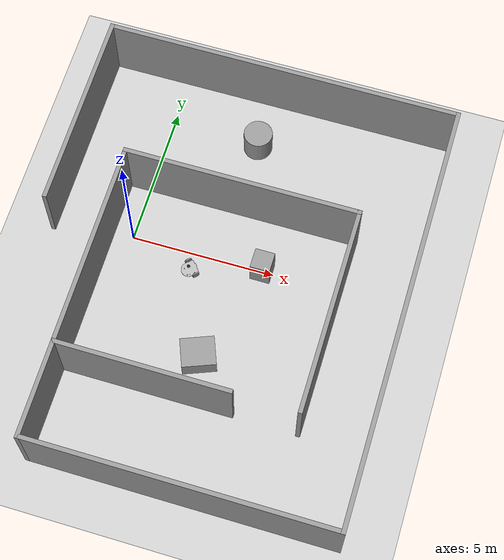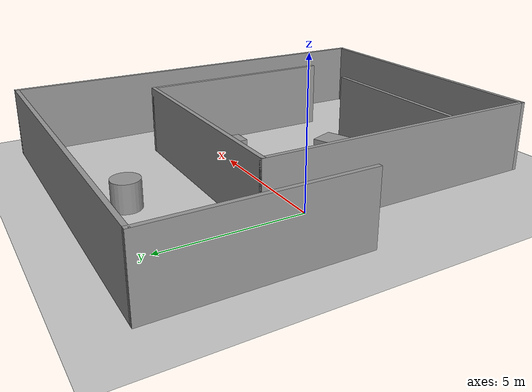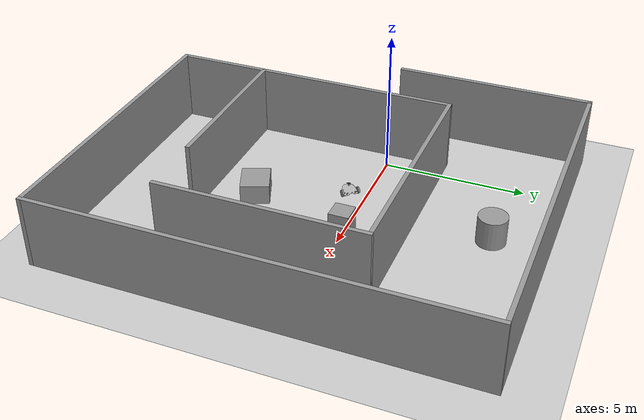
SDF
<sdf version="1.7">
 <world name="default">
  <light name="sun" type="directional">
   <pose>0 0 10 0 -0 0</pose>
   <diffuse>0.8 0.8 0.8 1</diffuse>
   <specular>0.2 0.2 0.2 1</specular>
   <attenuation>
    <range>1000</range>
    <constant>0.9</constant>
    <linear>0.01</linear>
    <quadratic>0.001</quadratic>
   </attenuation>
   <direction>-0.5 0.1 -0.9</direction>
   <spot><inner_angle>0</inner_angle><outer_angle>0</outer_angle><falloff>0</falloff></spot>
  </light>
  <model name="ground_plane">
   <static>1</static>
   <link name="link">
    <collision name="collision">
     <geometry><plane><normal>0 0 1</normal><size>100 100</size></plane></geometry>
     <surface>
      <contact><collide_bitmask>65535</collide_bitmask></contact>
      <friction><ode><mu>100</mu><mu2>50</mu2></ode></friction>
     </surface>
    </collision>
    <visual name="visual">
     <cast_shadows>0</cast_shadows>
     <geometry><plane><normal>0 0 1</normal><size>100 100</size></plane></geometry>
     <material>
      <script><uri>file://media/materials/scripts/gazebo.material</uri><name>Gazebo/Grey</name></script>
     </material>
    </visual>
   </link>
  </model>
  <gravity>0 0 -9.8</gravity>
  <magnetic_field>6e-06 2.3e-05 -4.2e-05</magnetic_field>
  <atmosphere type="adiabatic"/>
  <physics type="ode">
   <max_step_size>0.001</max_step_size>
   <real_time_factor>1</real_time_factor>
   <real_time_update_rate>1000</real_time_update_rate>
  </physics>
  <scene><ambient>0.4 0.4 0.4 1</ambient><background>0.7 0.7 0.7 1</background><shadows>1</shadows></scene>
  <audio><device>default</device></audio>
  <spherical_coordinates>
   <surface_model>EARTH_WGS84</surface_model>
   <latitude_deg>0</latitude_deg>
   <longitude_deg>0</longitude_deg>
   <elevation>0</elevation>
   <heading_deg>0</heading_deg>
  </spherical_coordinates>
  <model name="dustbuster">
   <link name="base_link">
    <inertial>
     <pose>0.033753 0 0.022797 0 -0 0</pose>
     <mass>25.71</mass>
     <inertia>
      <ixx>0.518029</ixx>
      <ixy>0</ixy>
      <ixz>-0.138131</ixz>
      <iyy>0.873749</iyy>
      <iyz>0</iyz>
      <izz>1.0779</izz>
     </inertia>
    </inertial>
    <collision name="base_link_fixed_joint_lump__collision_collision">
     <geometry>
      <mesh>
       <scale>1 1 1</scale>
       <uri>file:///home/onur/Desktop/DustBusterAI-Software/dustbuster_ws/src/dustbuster_launch/dustbuster_launch/description/mesh/chassis.stl</uri>
      </mesh>
     </geometry>
    </collision>
    <collision name="base_link_fixed_joint_lump__laser_frame_collision_1">
     <pose>0.122 0 0.25 0 -0 0</pose>
     <geometry><cylinder><length>0.04</length><radius>0.05</radius></cylinder></geometry>
    </collision>
    <visual name="base_link_fixed_joint_lump__visual_visual">
     <geometry>
      <mesh>
       <scale>1 1 1</scale>
       <uri>file:///home/onur/Desktop/DustBusterAI-Software/dustbuster_ws/src/dustbuster_launch/dustbuster_launch/description/mesh/chassis.stl</uri>
      </mesh>
     </geometry>
    </visual>
    <visual name="base_link_fixed_joint_lump__camera_link_visual_1">
     <pose>0.276 0 0.181 0 -0 0</pose>
     <geometry><box><size>0.01 0.03 0.03</size></box></geometry>
     <material>
      <script><name>Gazebo/Black</name><uri>file://media/materials/scripts/gazebo.material</uri></script>
     </material>
    </visual>
    <visual name="base_link_fixed_joint_lump__camera_link_visual_2">
     <pose>0.276 0 0.131 0 -0 0</pose>
     <geometry><cylinder><length>0.1</length><radius>0.002</radius></cylinder></geometry>
     <material>
      <script><name>Gazebo/Black</name><uri>file://media/materials/scripts/gazebo.material</uri></script>
     </material>
    </visual>
    <visual name="base_link_fixed_joint_lump__laser_frame_visual_3">
     <pose>0.122 0 0.25 0 -0 0</pose>
     <geometry><cylinder><length>0.04</length><radius>0.05</radius></cylinder></geometry>
     <material>
      <script><name>Gazebo/Black</name><uri>file://media/materials/scripts/gazebo.material</uri></script>
     </material>
    </visual>
    <visual name="base_link_fixed_joint_lump__laser_frame_visual_4">
     <pose>0.122 0 0.2 0 -0 0</pose>
     <geometry><cylinder><length>0.1</length><radius>0.01</radius></cylinder></geometry>
     <material>
      <script><name>Gazebo/Black</name><uri>file://media/materials/scripts/gazebo.material</uri></script>
     </material>
    </visual>
    <visual name="base_link_fixed_joint_lump__imu_link_visual_5">
     <geometry><box><size>0.01 0.01 0.01</size></box></geometry>
    </visual>
    <sensor name="camera" type="camera">
     <visualize>1</visualize>
     <update_rate>10</update_rate>
     <camera>
      <horizontal_fov>1.089</horizontal_fov>
      <image><format>R8G8B8</format><width>640</width><height>480</height></image>
      <clip><near>0.05</near><far>8</far></clip>
     </camera>
     <plugin name="camera_controller" filename="libgazebo_ros_camera.so">
      <frame_name>camera_link_optical</frame_name>
     </plugin>
     <pose>0.276 0 0.181 0 -0 0</pose>
    </sensor>
    <sensor name="laser" type="ray">
     <visualize>1</visualize>
     <update_rate>10</update_rate>
     <ray>
      <scan>
       <horizontal>
        <samples>683</samples>
        <min_angle>-2.08621</min_angle>
        <max_angle>2.08621</max_angle>
        <resolution>1</resolution>
       </horizontal>
       <vertical><samples>1</samples><min_angle>0</min_angle><max_angle>0</max_angle></vertical>
      </scan>
      <range><min>0.2</min><max>5.6</max></range>
     </ray>
     <plugin name="laser_controller" filename="libgazebo_ros_ray_sensor.so">
      <ros><argument>~/out:=scan</argument></ros>
      <output_type>sensor_msgs/LaserScan</output_type>
      <frame_name>laser_frame</frame_name>
     </plugin>
     <pose>0.122 0 0.25 0 -0 0</pose>
    </sensor>
    <sensor name="imu_sensor" type="imu">
     <always_on>1</always_on>
     <update_rate>200</update_rate>
     <plugin name="gazebo_ros_imu_controller" filename="libgazebo_ros_imu_sensor.so">
      <ros><argument>~/out:=imu</argument></ros>
      <body_name>imu_link</body_name>
      <topicName>imu/data</topicName>
      <frameId>imu_link</frameId>
      <xyzOffsets>0 0 0</xyzOffsets>
      <rpyOffsets>0 0 0</rpyOffsets>
      <gaussianNoise>0.0</gaussianNoise>
      <biasTopic>~/imu/bias</biasTopic>
     </plugin>
    </sensor>
   </link>
   <joint name="caster_wheel_mount_joint" type="revolute">
    <pose relative_to="base_link">0.35 0 -0.0625 0 -0 0</pose>
    <parent>base_link</parent>
    <child>caster_wheel_mount</child>
    <axis>
     <xyz>0 0 1</xyz>
     <limit><lower>-1e+20</lower><upper>1e+20</upper><effort>1</effort><velocity>2</velocity></limit>
     <dynamics><spring_reference>0</spring_reference><spring_stiffness>0</spring_stiffness></dynamics>
    </axis>
   </joint>
   <link name="caster_wheel_mount">
    <pose relative_to="caster_wheel_mount_joint">0 0 0 0 -0 0</pose>
    <inertial>
     <mass>0.1</mass>
     <inertia>
      <ixx>3.52083e-05</ixx>
      <ixy>0</ixy>
      <ixz>0</ixz>
      <iyy>3.52083e-05</iyy>
      <iyz>0</iyz>
      <izz>1.04167e-05</izz>
     </inertia>
    </inertial>
    <collision name="caster_wheel_mount_collision">
     <geometry><box><size>0.025 0.025 0.06</size></box></geometry>
    </collision>
    <visual name="caster_wheel_mount_visual">
     <geometry><box><size>0.025 0.025 0.06</size></box></geometry>
    </visual>
   </link>
   <joint name="caster_wheel_joint" type="revolute">
    <pose relative_to="caster_wheel_mount">0 0 -0.025 1.5708 -0 0</pose>
    <parent>caster_wheel_mount</parent>
    <child>caster_wheel</child>
    <axis>
     <xyz>0 0 1</xyz>
     <limit><lower>-1e+20</lower><upper>1e+20</upper><effort>1</effort><velocity>2</velocity></limit>
     <dynamics><spring_reference>0</spring_reference><spring_stiffness>0</spring_stiffness></dynamics>
    </axis>
   </joint>
   <link name="caster_wheel">
    <pose relative_to="caster_wheel_joint">0 0 0 0 -0 0</pose>
    <inertial>
     <mass>0.1</mass>
     <inertia>
      <ixx>3.39583e-05</ixx>
      <ixy>0</ixy>
      <ixz>0</ixz>
      <iyy>6.125e-05</iyy>
      <iyz>0</iyz>
      <izz>3.39583e-05</izz>
     </inertia>
    </inertial>
    <collision name="caster_wheel_collision">
     <geometry><cylinder><length>0.02</length><radius>0.035</radius></cylinder></geometry>
    </collision>
    <visual name="caster_wheel_visual">
     <geometry><cylinder><length>0.02</length><radius>0.035</radius></cylinder></geometry>
     <material>
      <script><name>Gazebo/Grey</name><uri>file://media/materials/scripts/gazebo.material</uri></script>
     </material>
    </visual>
    <surface><friction><ode><mu>0.8</mu><mu2>0.7</mu2></ode></friction></surface>
   </link>
   <joint name="left_wheel_joint" type="revolute">
    <pose relative_to="base_link">0 0.2935 0 -1.5708 0 0</pose>
    <parent>base_link</parent>
    <child>left_wheel</child>
    <axis>
     <xyz>0 0 1</xyz>
     <limit><lower>-1e+16</lower><upper>1e+16</upper></limit>
     <dynamics><spring_reference>0</spring_reference><spring_stiffness>0</spring_stiffness></dynamics>
    </axis>
   </joint>
   <link name="left_wheel">
    <pose relative_to="left_wheel_joint">0 0 0 0 -0 0</pose>
    <inertial>
     <mass>0.5</mass>
     <inertia>
      <ixx>0.00197995</ixx>
      <ixy>0</ixy>
      <ixz>0</ixz>
      <iyy>0.00375234</iyy>
      <iyz>0</iyz>
      <izz>0.00197995</izz>
     </inertia>
    </inertial>
    <collision name="left_wheel_collision">
     <geometry><cylinder><length>0.05</length><radius>0.1225</radius></cylinder></geometry>
    </collision>
    <visual name="left_wheel_visual">
     <geometry><cylinder><length>0.05</length><radius>0.1225</radius></cylinder></geometry>
     <material>
      <script><name>Gazebo/Grey</name><uri>file://media/materials/scripts/gazebo.material</uri></script>
     </material>
    </visual>
    <surface><friction><ode><mu>0.8</mu><mu2>0.7</mu2></ode></friction></surface>
   </link>
   <joint name="right_wheel_joint" type="revolute">
    <pose relative_to="base_link">0 -0.2935 0 1.5708 -0 0</pose>
    <parent>base_link</parent>
    <child>right_wheel</child>
    <axis>
     <xyz>0 0 -1</xyz>
     <limit><lower>-1e+16</lower><upper>1e+16</upper></limit>
     <dynamics><spring_reference>0</spring_reference><spring_stiffness>0</spring_stiffness></dynamics>
    </axis>
   </joint>
   <link name="right_wheel">
    <pose relative_to="right_wheel_joint">0 0 0 0 -0 0</pose>
    <inertial>
     <mass>0.5</mass>
     <inertia>
      <ixx>0.00197995</ixx>
      <ixy>0</ixy>
      <ixz>0</ixz>
      <iyy>0.00375234</iyy>
      <iyz>0</iyz>
      <izz>0.00197995</izz>
     </inertia>
    </inertial>
    <collision name="right_wheel_collision">
     <geometry><cylinder><length>0.05</length><radius>0.1225</radius></cylinder></geometry>
    </collision>
    <visual name="right_wheel_visual">
     <geometry><cylinder><length>0.05</length><radius>0.1225</radius></cylinder></geometry>
     <material>
      <script><name>Gazebo/Grey</name><uri>file://media/materials/scripts/gazebo.material</uri></script>
     </material>
    </visual>
    <surface><friction><ode><mu>0.8</mu><mu2>0.7</mu2></ode></friction></surface>
   </link>
   <static>0</static>
   <plugin name="diff_drive" filename="libgazebo_ros_diff_drive.so">
    <left_joint>left_wheel_joint</left_joint>
    <right_joint>right_wheel_joint</right_joint>
    <wheel_separation>0.587</wheel_separation>
    <wheel_diameter>0.245</wheel_diameter>
    <max_wheel_torque>200</max_wheel_torque>
    <max_wheel_acceleration>10.0</max_wheel_acceleration>
    <odometry_frame>odom</odometry_frame>
    <robot_base_frame>base_link</robot_base_frame>
    <publish_odom>1</publish_odom>
    <publish_odom_tf>1</publish_odom_tf>
    <publish_wheel_tf>1</publish_wheel_tf>
   </plugin>
   <pose>2.27713 -0.554798 0.122499 2e-06 4.4e-05 -2.39431</pose>
  </model>
  <model name="walls2">
   <link name="Wall_2">
    <pose>-6.05 4 0 0 -0 1.5708</pose>
    <visual name="Wall_2_Visual">
     <pose>0 0 1.25 0 -0 0</pose>
     <geometry><box><size>7 0.15 2.5</size></box></geometry>
     <material>
      <script><uri>file://media/materials/scripts/gazebo.material</uri><name>Gazebo/Grey</name></script>
      <ambient>1 1 1 1</ambient>
      <shader type="pixel"/>
     </material>
     <meta><layer>0</layer></meta>
    </visual>
    <collision name="Wall_2_Collision">
     <pose>0 0 1.25 0 -0 0</pose>
     <geometry><box><size>7 0.15 2.5</size></box></geometry>
     <surface>
      <friction>
       <ode><mu>1</mu><mu2>1</mu2><fdir1>0 0 0</fdir1><slip1>0</slip1><slip2>0</slip2></ode>
       <torsional>
        <coefficient>1</coefficient>
        <patch_radius>0</patch_radius>
        <surface_radius>0</surface_radius>
        <use_patch_radius>1</use_patch_radius>
        <ode><slip>0</slip></ode>
       </torsional>
      </friction>
      <bounce><restitution_coefficient>0</restitution_coefficient><threshold>1e+06</threshold></bounce>
      <contact>
       <collide_without_contact>0</collide_without_contact>
       <collide_without_contact_bitmask>1</collide_without_contact_bitmask>
       <collide_bitmask>1</collide_bitmask>
       <ode>
        <soft_cfm>0</soft_cfm>
        <soft_erp>0.2</soft_erp>
        <kp>1e+13</kp>
        <kd>1</kd>
        <max_vel>0.01</max_vel>
        <min_depth>0</min_depth>
       </ode>
       <bullet>
        <split_impulse>1</split_impulse>
        <split_impulse_penetration_threshold>-0.01</split_impulse_penetration_threshold>
        <soft_cfm>0</soft_cfm>
        <soft_erp>0.2</soft_erp>
        <kp>1e+13</kp>
        <kd>1</kd>
       </bullet>
      </contact>
     </surface>
    </collision>
   </link>
   <link name="Wall_3">
    <pose>0.125 7.425 0 0 -0 0</pose>
    <visual name="Wall_3_Visual">
     <pose>0 0 1.25 0 -0 0</pose>
     <geometry><box><size>12.5 0.15 2.5</size></box></geometry>
     <material>
      <script><uri>file://media/materials/scripts/gazebo.material</uri><name>Gazebo/Grey</name></script>
      <ambient>1 1 1 1</ambient>
      <shader type="pixel"/>
     </material>
     <meta><layer>0</layer></meta>
    </visual>
    <collision name="Wall_3_Collision">
     <pose>0 0 1.25 0 -0 0</pose>
     <geometry><box><size>12.5 0.15 2.5</size></box></geometry>
     <surface>
      <friction>
       <ode><mu>1</mu><mu2>1</mu2><fdir1>0 0 0</fdir1><slip1>0</slip1><slip2>0</slip2></ode>
       <torsional>
        <coefficient>1</coefficient>
        <patch_radius>0</patch_radius>
        <surface_radius>0</surface_radius>
        <use_patch_radius>1</use_patch_radius>
        <ode><slip>0</slip></ode>
       </torsional>
      </friction>
      <bounce><restitution_coefficient>0</restitution_coefficient><threshold>1e+06</threshold></bounce>
      <contact>
       <collide_without_contact>0</collide_without_contact>
       <collide_without_contact_bitmask>1</collide_without_contact_bitmask>
       <collide_bitmask>1</collide_bitmask>
       <ode>
        <soft_cfm>0</soft_cfm>
        <soft_erp>0.2</soft_erp>
        <kp>1e+13</kp>
        <kd>1</kd>
        <max_vel>0.01</max_vel>
        <min_depth>0</min_depth>
       </ode>
       <bullet>
        <split_impulse>1</split_impulse>
        <split_impulse_penetration_threshold>-0.01</split_impulse_penetration_threshold>
        <soft_cfm>0</soft_cfm>
        <soft_erp>0.2</soft_erp>
        <kp>1e+13</kp>
        <kd>1</kd>
       </bullet>
      </contact>
     </surface>
    </collision>
   </link>
   <link name="Wall_4">
    <pose>6.3 0 0 0 0 -1.5708</pose>
    <visual name="Wall_4_Visual">
     <pose>0 0 1.25 0 -0 0</pose>
     <geometry><box><size>15 0.15 2.5</size></box></geometry>
     <material>
      <script><uri>file://media/materials/scripts/gazebo.material</uri><name>Gazebo/Grey</name></script>
      <ambient>1 1 1 1</ambient>
      <shader type="pixel"/>
     </material>
     <meta><layer>0</layer></meta>
    </visual>
    <collision name="Wall_4_Collision">
     <pose>0 0 1.25 0 -0 0</pose>
     <geometry><box><size>15 0.15 2.5</size></box></geometry>
     <surface>
      <friction>
       <ode><mu>1</mu><mu2>1</mu2><fdir1>0 0 0</fdir1><slip1>0</slip1><slip2>0</slip2></ode>
       <torsional>
        <coefficient>1</coefficient>
        <patch_radius>0</patch_radius>
        <surface_radius>0</surface_radius>
        <use_patch_radius>1</use_patch_radius>
        <ode><slip>0</slip></ode>
       </torsional>
      </friction>
      <bounce><restitution_coefficient>0</restitution_coefficient><threshold>1e+06</threshold></bounce>
      <contact>
       <collide_without_contact>0</collide_without_contact>
       <collide_without_contact_bitmask>1</collide_without_contact_bitmask>
       <collide_bitmask>1</collide_bitmask>
       <ode>
        <soft_cfm>0</soft_cfm>
        <soft_erp>0.2</soft_erp>
        <kp>1e+13</kp>
        <kd>1</kd>
        <max_vel>0.01</max_vel>
        <min_depth>0</min_depth>
       </ode>
       <bullet>
        <split_impulse>1</split_impulse>
        <split_impulse_penetration_threshold>-0.01</split_impulse_penetration_threshold>
        <soft_cfm>0</soft_cfm>
        <soft_erp>0.2</soft_erp>
        <kp>1e+13</kp>
        <kd>1</kd>
       </bullet>
      </contact>
     </surface>
    </collision>
   </link>
   <link name="Wall_5">
    <pose>1.125 -7.425 0 0 -0 3.14159</pose>
    <visual name="Wall_5_Visual">
     <pose>0 0 1.25 0 -0 0</pose>
     <geometry><box><size>10.5 0.15 2.5</size></box></geometry>
     <material>
      <script><uri>file://media/materials/scripts/gazebo.material</uri><name>Gazebo/Grey</name></script>
      <ambient>1 1 1 1</ambient>
      <shader type="pixel"/>
     </material>
     <meta><layer>0</layer></meta>
    </visual>
    <collision name="Wall_5_Collision">
     <pose>0 0 1.25 0 -0 0</pose>
     <geometry><box><size>10.5 0.15 2.5</size></box></geometry>
     <surface>
      <friction>
       <ode><mu>1</mu><mu2>1</mu2><fdir1>0 0 0</fdir1><slip1>0</slip1><slip2>0</slip2></ode>
       <torsional>
        <coefficient>1</coefficient>
        <patch_radius>0</patch_radius>
        <surface_radius>0</surface_radius>
        <use_patch_radius>1</use_patch_radius>
        <ode><slip>0</slip></ode>
       </torsional>
      </friction>
      <bounce><restitution_coefficient>0</restitution_coefficient><threshold>1e+06</threshold></bounce>
      <contact>
       <collide_without_contact>0</collide_without_contact>
       <collide_without_contact_bitmask>1</collide_without_contact_bitmask>
       <collide_bitmask>1</collide_bitmask>
       <ode>
        <soft_cfm>0</soft_cfm>
        <soft_erp>0.2</soft_erp>
        <kp>1e+13</kp>
        <kd>1</kd>
        <max_vel>0.01</max_vel>
        <min_depth>0</min_depth>
       </ode>
       <bullet>
        <split_impulse>1</split_impulse>
        <split_impulse_penetration_threshold>-0.01</split_impulse_penetration_threshold>
        <soft_cfm>0</soft_cfm>
        <soft_erp>0.2</soft_erp>
        <kp>1e+13</kp>
        <kd>1</kd>
       </bullet>
      </contact>
     </surface>
    </collision>
   </link>
   <link name="Wall_6">
    <pose>-4.05 -2.25 0 0 -0 1.5708</pose>
    <visual name="Wall_6_Visual">
     <pose>0 0 1.25 0 -0 0</pose>
     <geometry><box><size>10.5 0.15 2.5</size></box></geometry>
     <material>
      <script><uri>file://media/materials/scripts/gazebo.material</uri><name>Gazebo/Grey</name></script>
      <ambient>1 1 1 1</ambient>
      <shader type="pixel"/>
     </material>
     <meta><layer>0</layer></meta>
    </visual>
    <collision name="Wall_6_Collision">
     <pose>0 0 1.25 0 -0 0</pose>
     <geometry><box><size>10.5 0.15 2.5</size></box></geometry>
     <surface>
      <friction>
       <ode><mu>1</mu><mu2>1</mu2><fdir1>0 0 0</fdir1><slip1>0</slip1><slip2>0</slip2></ode>
       <torsional>
        <coefficient>1</coefficient>
        <patch_radius>0</patch_radius>
        <surface_radius>0</surface_radius>
        <use_patch_radius>1</use_patch_radius>
        <ode><slip>0</slip></ode>
       </torsional>
      </friction>
      <bounce><restitution_coefficient>0</restitution_coefficient><threshold>1e+06</threshold></bounce>
      <contact>
       <collide_without_contact>0</collide_without_contact>
       <collide_without_contact_bitmask>1</collide_without_contact_bitmask>
       <collide_bitmask>1</collide_bitmask>
       <ode>
        <soft_cfm>0</soft_cfm>
        <soft_erp>0.2</soft_erp>
        <kp>1e+13</kp>
        <kd>1</kd>
        <max_vel>0.01</max_vel>
        <min_depth>0</min_depth>
       </ode>
       <bullet>
        <split_impulse>1</split_impulse>
        <split_impulse_penetration_threshold>-0.01</split_impulse_penetration_threshold>
        <soft_cfm>0</soft_cfm>
        <soft_erp>0.2</soft_erp>
        <kp>1e+13</kp>
        <kd>1</kd>
       </bullet>
      </contact>
     </surface>
    </collision>
   </link>
   <link name="Wall_7">
    <pose>0 2.925 0 0 -0 0</pose>
    <visual name="Wall_7_Visual">
     <pose>0 0 1.25 0 -0 0</pose>
     <geometry><box><size>8.25 0.15 2.5</size></box></geometry>
     <material>
      <script><uri>file://media/materials/scripts/gazebo.material</uri><name>Gazebo/Grey</name></script>
      <ambient>1 1 1 1</ambient>
      <shader type="pixel"/>
     </material>
     <meta><layer>0</layer></meta>
    </visual>
    <collision name="Wall_7_Collision">
     <pose>0 0 1.25 0 -0 0</pose>
     <geometry><box><size>8.25 0.15 2.5</size></box></geometry>
     <surface>
      <friction>
       <ode><mu>1</mu><mu2>1</mu2><fdir1>0 0 0</fdir1><slip1>0</slip1><slip2>0</slip2></ode>
       <torsional>
        <coefficient>1</coefficient>
        <patch_radius>0</patch_radius>
        <surface_radius>0</surface_radius>
        <use_patch_radius>1</use_patch_radius>
        <ode><slip>0</slip></ode>
       </torsional>
      </friction>
      <bounce><restitution_coefficient>0</restitution_coefficient><threshold>1e+06</threshold></bounce>
      <contact>
       <collide_without_contact>0</collide_without_contact>
       <collide_without_contact_bitmask>1</collide_without_contact_bitmask>
       <collide_bitmask>1</collide_bitmask>
       <ode>
        <soft_cfm>0</soft_cfm>
        <soft_erp>0.2</soft_erp>
        <kp>1e+13</kp>
        <kd>1</kd>
        <max_vel>0.01</max_vel>
        <min_depth>0</min_depth>
       </ode>
       <bullet>
        <split_impulse>1</split_impulse>
        <split_impulse_penetration_threshold>-0.01</split_impulse_penetration_threshold>
        <soft_cfm>0</soft_cfm>
        <soft_erp>0.2</soft_erp>
        <kp>1e+13</kp>
        <kd>1</kd>
       </bullet>
      </contact>
     </surface>
    </collision>
   </link>
   <link name="Wall_8">
    <pose>4.05 -0.625 0 0 0 -1.5708</pose>
    <visual name="Wall_8_Visual">
     <pose>0 0 1.25 0 -0 0</pose>
     <geometry><box><size>7.25 0.15 2.5</size></box></geometry>
     <material>
      <script><uri>file://media/materials/scripts/gazebo.material</uri><name>Gazebo/Grey</name></script>
      <ambient>1 1 1 1</ambient>
      <shader type="pixel"/>
     </material>
     <meta><layer>0</layer></meta>
    </visual>
    <collision name="Wall_8_Collision">
     <pose>0 0 1.25 0 -0 0</pose>
     <geometry><box><size>7.25 0.15 2.5</size></box></geometry>
     <surface>
      <friction>
       <ode><mu>1</mu><mu2>1</mu2><fdir1>0 0 0</fdir1><slip1>0</slip1><slip2>0</slip2></ode>
       <torsional>
        <coefficient>1</coefficient>
        <patch_radius>0</patch_radius>
        <surface_radius>0</surface_radius>
        <use_patch_radius>1</use_patch_radius>
        <ode><slip>0</slip></ode>
       </torsional>
      </friction>
      <bounce><restitution_coefficient>0</restitution_coefficient><threshold>1e+06</threshold></bounce>
      <contact>
       <collide_without_contact>0</collide_without_contact>
       <collide_without_contact_bitmask>1</collide_without_contact_bitmask>
       <collide_bitmask>1</collide_bitmask>
       <ode>
        <soft_cfm>0</soft_cfm>
        <soft_erp>0.2</soft_erp>
        <kp>1e+13</kp>
        <kd>1</kd>
        <max_vel>0.01</max_vel>
        <min_depth>0</min_depth>
       </ode>
       <bullet>
        <split_impulse>1</split_impulse>
        <split_impulse_penetration_threshold>-0.01</split_impulse_penetration_threshold>
        <soft_cfm>0</soft_cfm>
        <soft_erp>0.2</soft_erp>
        <kp>1e+13</kp>
        <kd>1</kd>
       </bullet>
      </contact>
     </surface>
    </collision>
   </link>
   <link name="Wall_9">
    <pose>-1.125 -4.175 0 0 -0 3.14159</pose>
    <inertial>
     <inertia><ixx>0</ixx><ixy>0</ixy><ixz>0</ixz><iyy>0</iyy><iyz>0</iyz><izz>0</izz></inertia>
     <mass>0</mass>
    </inertial>
    <visual name="Wall_9_Visual">
     <pose>0 0 1.25 0 -0 0</pose>
     <geometry><box><size>5.96914 0.15 2.5</size></box></geometry>
     <material>
      <script><uri>file://media/materials/scripts/gazebo.material</uri><name>Gazebo/Grey</name></script>
      <ambient>1 1 1 1</ambient>
      <shader type="pixel"/>
     </material>
     <meta><layer>0</layer></meta>
    </visual>
    <collision name="Wall_9_Collision">
     <pose>0 0 1.25 0 -0 0</pose>
     <geometry><box><size>5.96914 0.15 2.5</size></box></geometry>
     <surface>
      <friction>
       <ode><mu>1</mu><mu2>1</mu2><fdir1>0 0 0</fdir1><slip1>0</slip1><slip2>0</slip2></ode>
       <torsional>
        <coefficient>1</coefficient>
        <patch_radius>0</patch_radius>
        <surface_radius>0</surface_radius>
        <use_patch_radius>1</use_patch_radius>
        <ode><slip>0</slip></ode>
       </torsional>
      </friction>
      <bounce><restitution_coefficient>0</restitution_coefficient><threshold>1e+06</threshold></bounce>
      <contact>
       <collide_without_contact>0</collide_without_contact>
       <collide_without_contact_bitmask>1</collide_without_contact_bitmask>
       <collide_bitmask>1</collide_bitmask>
       <ode>
        <soft_cfm>0</soft_cfm>
        <soft_erp>0.2</soft_erp>
        <kp>1e+13</kp>
        <kd>1</kd>
        <max_vel>0.01</max_vel>
        <min_depth>0</min_depth>
       </ode>
       <bullet>
        <split_impulse>1</split_impulse>
        <split_impulse_penetration_threshold>-0.01</split_impulse_penetration_threshold>
        <soft_cfm>0</soft_cfm>
        <soft_erp>0.2</soft_erp>
        <kp>1e+13</kp>
        <kd>1</kd>
       </bullet>
      </contact>
     </surface>
    </collision>
   </link>
   <static>1</static>
   <pose>3.28624 -0.97807 0 0 -0 0</pose>
  </model>
  <model name="unit_box">
   <pose>4.59568 0.028223 0.5 0 -0 8.7e-05</pose>
   <link name="link">
    <inertial>
     <mass>1</mass>
     <inertia>
      <ixx>0.166667</ixx>
      <ixy>0</ixy>
      <ixz>0</ixz>
      <iyy>0.166667</iyy>
      <iyz>0</iyz>
      <izz>0.166667</izz>
     </inertia>
    </inertial>
    <collision name="collision"><geometry><box><size>0.684623 0.69667 1</size></box></geometry></collision>
    <visual name="visual">
     <geometry><box><size>0.684623 0.69667 1</size></box></geometry>
     <material>
      <script><name>Gazebo/Grey</name><uri>file://media/materials/scripts/gazebo.material</uri></script>
     </material>
    </visual>
   </link>
  </model>
  <model name="unit_box_clone">
   <pose>3.45877 -3.58302 0.348335 1.5708 -0 0.37554</pose>
   <link name="link">
    <inertial>
     <mass>1</mass>
     <inertia>
      <ixx>0.166667</ixx>
      <ixy>0</ixy>
      <ixz>0</ixz>
      <iyy>0.166667</iyy>
      <iyz>0</iyz>
      <izz>0.166667</izz>
     </inertia>
    </inertial>
    <collision name="collision"><geometry><box><size>1.14993 0.69667 1</size></box></geometry></collision>
    <visual name="visual">
     <geometry><box><size>1.14993 0.69667 1</size></box></geometry>
     <material>
      <script><name>Gazebo/Grey</name><uri>file://media/materials/scripts/gazebo.material</uri></script>
     </material>
    </visual>
   </link>
  </model>
  <model name="unit_cylinder">
   <pose>3.09071 4.60507 0.499993 -3e-06 -3e-06 0</pose>
   <link name="link">
    <inertial>
     <mass>1</mass>
     <inertia><ixx>0.145833</ixx><ixy>0</ixy><ixz>0</ixz><iyy>0.145833</iyy><iyz>0</iyz><izz>0.125</izz></inertia>
    </inertial>
    <collision name="collision">
     <geometry><cylinder><radius>0.5</radius><length>1</length></cylinder></geometry>
    </collision>
    <visual name="visual">
     <geometry><cylinder><radius>0.5</radius><length>1</length></cylinder></geometry>
     <material>
      <script><name>Gazebo/Grey</name><uri>file://media/materials/scripts/gazebo.material</uri></script>
     </material>
    </visual>
   </link>
  </model>
 </world>
</sdf>
